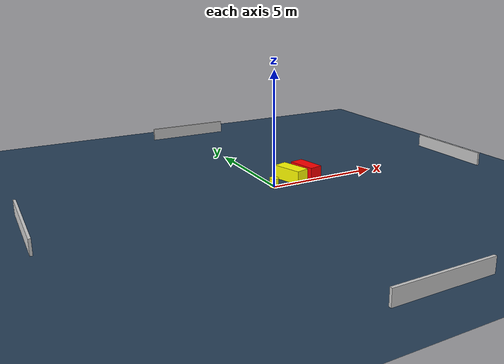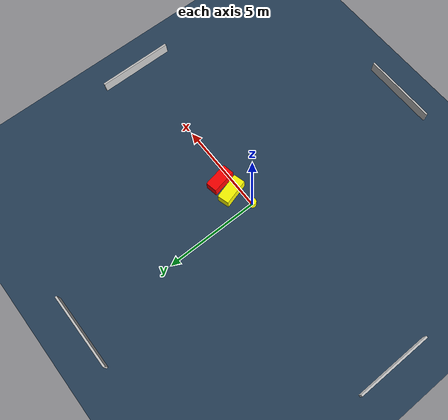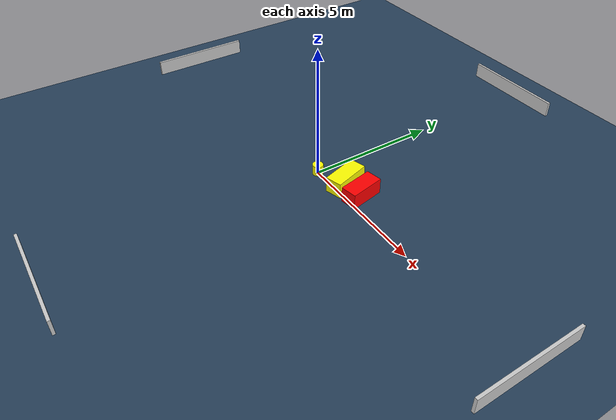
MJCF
<?xml version="1.0" ?>
<mujoco model="generated_environment">
  <option timestep="0.01" integrator="RK4" cone="elliptic"/>
  <default>
    <geom density="1"/>
  </default>
  <asset>
    <texture builtin="gradient" height="3072" name="skybox" rgb1="0.3 0.5 0.7" rgb2="0 0 0" type="skybox" width="512"/>
    <texture builtin="checker" height="300" name="groundplane" rgb1="0.2 0.3 0.4" rgb2="0.1 0.2 0.3" type="2d" width="300"/>
    <material name="groundplane" reflectance="0.2" texrepeat="5 5" texture="groundplane"/>
  </asset>
  <worldbody>
    <light dir="0 0 -1" directional="true" pos="0 0 1.5"/>
    <geom condim="3" friction="0.5 0.005 0.001" material="groundplane" name="floor" pos="0 0 0" size="0 0 0.05" type="plane"/>
    <body name="walls">
      <geom name="wall_1" condim="4" pos="-10.0 0.0 0.3" rgba="0.800000011920929 0.800000011920929 0.800000011920929 1.0" size="0.05 2.0 0.3" type="box"/>
      <geom name="wall_2" condim="4" pos="10.0 0.0 0.3" rgba="0.800000011920929 0.800000011920929 0.800000011920929 1.0" size="0.05 2.0 0.3" type="box"/>
      <geom name="wall_3" condim="4" pos="0.0 -10.0 0.3" rgba="0.800000011920929 0.800000011920929 0.800000011920929 1.0" size="2.0 0.05 0.3" type="box"/>
      <geom name="wall_4" condim="4" pos="0.0 10.0 0.3" rgba="0.800000011920929 0.800000011920929 0.800000011920929 1.0" size="2.0 0.05 0.3" type="box"/>
    </body>
    <body name="robot">
      <joint name="joint_x" type="slide" pos="0 0 0" axis="1 0 0"/>
      <joint name="joint_y" type="slide" pos="0 0 0" axis="0 1 0"/>
      <geom name="robot" type="cylinder" pos="0.0 0.0 0.2" size="0.2 0.2 0.0" mass="5.0" friction="1.0 0.005 0.0001" condim="4" rgba="1.0 1.0 0.0 1.0"/>
    </body>
    <body name="obstacle_1_movable">
      <geom name="obstacle_1_movable" condim="4" pos="1.1126022697126798 0.4455119904537195 0.3" euler="0 0 16.116785125279375" friction="0.0 0.005 0.001" rgba="1.0 1.0 0.0 1.0" size="0.3109402253988653 0.693351976593515 0.3" type="box" mass="0.1"/>
      <joint type="free"/>
    </body>
    <body name="obstacle_2_static">
      <geom name="obstacle_2_static" condim="4" pos="1.9276096634716056 0.5272433226732097 0.3" euler="0 0 190.8117040191406" friction="0.0 0.005 0.001" rgba="1.0 0.0 0.0 1.0" size="0.30471275010687376 0.648570910425217 0.3" type="box"/>
    </body>
  </worldbody>
  <actuator>
    <motor name="actuator_x" joint="joint_x" gear="1" ctrlrange="-1 1"/>
    <motor name="actuator_y" joint="joint_y" gear="1" ctrlrange="-1 1"/>
  </actuator>
</mujoco>
